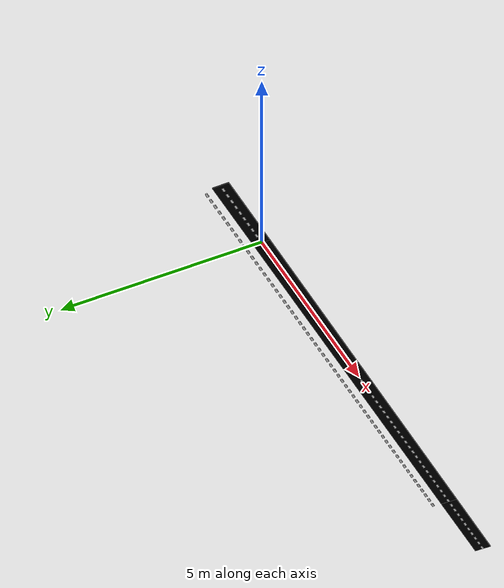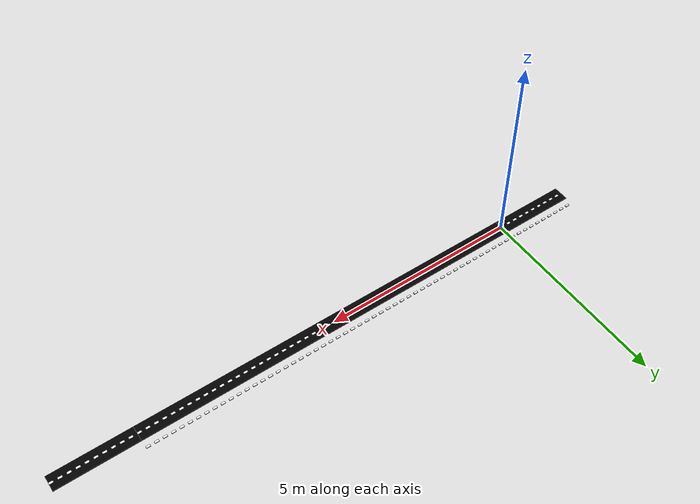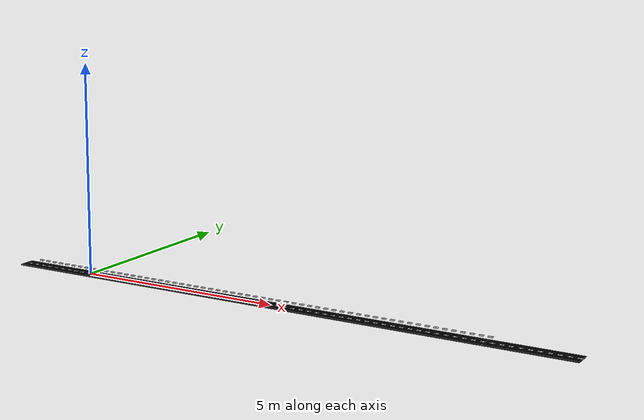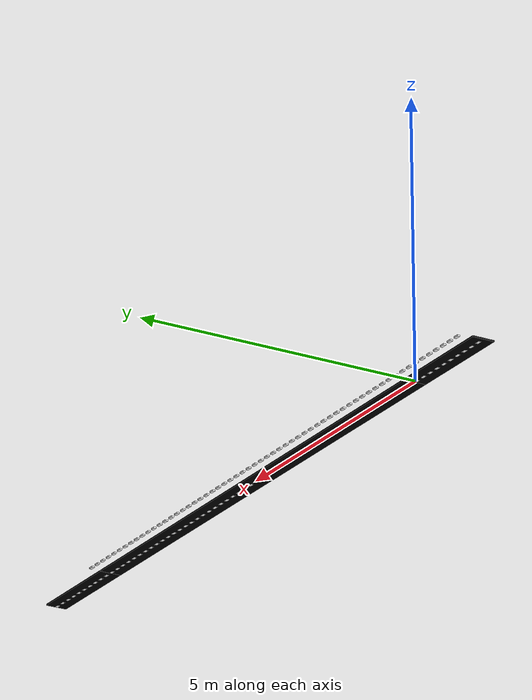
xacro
<?xml version="1.0"?>
<robot xmlns:xacro="http://www.ros.org/wiki/xacro" name="Track_01">
  <!-- Make the whole track static -->
  <gazebo>
    <static>true</static>
  </gazebo>

  <link
    name="Track_link">
    <inertial>
      <origin
        xyz="4.9967 -4.4409E-16 -0.0125"
        rpy="0 0 0" />
      <mass
        value="675" />
      <inertia
        ixx="9.6258"
        ixy="-1.4331E-12"
        ixz="-5.6401E-13"
        iyy="5625"
        iyz="2.6467E-13"
        izz="5634.6" />
    </inertial>
    <visual>
      <origin
        xyz="0 0 0.0125"
        rpy="0 0 0" />
      <geometry>
        <mesh
          filename="file://$(find mec)/meshes/Track_01_meshes/Track_link.STL" />
      </geometry>
      <material
        name="">
        <color
          rgba="0 0 0 1" />
      </material>
    </visual>
    <collision>
      <origin
        xyz="0 0 0.0125"
        rpy="0 0 0" />
      <geometry>
        <mesh
          filename="file://$(find mec)/meshes/Track_01_meshes/Track_link.STL" />
      </geometry>
    </collision>
  </link>
  <link
    name="Track_lane">
    <inertial>
      <origin
        xyz="4.9 -1.3323E-15 -0.0125"
        rpy="0 0 0" />
      <mass
        value="45" />
      <inertia
        ixx="0.011719"
        ixy="-6.7221E-17"
        ixz="-1.9421E-17"
        iyy="0.039844"
        iyz="-5.9169E-18"
        izz="0.046875" />
    </inertial>
    <visual>
      <origin
        xyz="0 0 0.0125"
        rpy="0 0 0" />
      <geometry>
        <mesh
          filename="file://$(find mec)/meshes/Track_01_meshes/Track_lane.STL" />
      </geometry>
      <material
        name="">
        <color
          rgba="1 1 1 1" />
      </material>
    </visual>
    <collision>
      <origin
        xyz="0 0 0.0125"
        rpy="0 0 0" />
      <geometry>
        <mesh
          filename="file://$(find mec)/meshes/Track_01_meshes/Track_lane.STL" />
      </geometry>
    </collision>
  </link>
  <joint
    name="Track_lane_joint"
    type="fixed">
    <origin
      xyz="0.15 0 0"
      rpy="0 0 0" />
    <parent
      link="Track_link" />
    <child
      link="Track_lane" />
    <axis
      xyz="0 0 0" />
  </joint>
  <link
    name="Back_Track">
    <inertial>
      <origin
        xyz="0 -8.8818E-16 -0.0125"
        rpy="0 0 0" />
      <mass
        value="135" />
      <inertia
        ixx="1.9252"
        ixy="1.1213E-14"
        ixz="-4.978E-15"
        iyy="45.006"
        iyz="-5.6329E-17"
        izz="46.917" />
    </inertial>
    <visual>
      <origin
        xyz="0 0 0.0125"
        rpy="0 0 0" />
      <geometry>
        <mesh
          filename="file://$(find mec)/meshes/Track_01_meshes/Back_Track.STL" />
      </geometry>
      <material
        name="">
        <color
          rgba="0 0 0 1" />
      </material>
    </visual>
    <collision>
      <origin
        xyz="0 0 0.0125"
        rpy="0 0 0" />
      <geometry>
        <mesh
          filename="file://$(find mec)/meshes/Track_01_meshes/Back_Track.STL" />
      </geometry>
    </collision>
  </link>
  <joint
    name="Back_Track_joint"
    type="fixed">
    <origin
      xyz="-1.0033 0 0"
      rpy="0 0 0" />
    <parent
      link="Track_link" />
    <child
      link="Back_Track" />
    <axis
      xyz="0 0 0" />
  </joint>
  <link
    name="Back_lane">
    <inertial>
      <origin
        xyz="0.5 8.8818E-16 -0.0125"
        rpy="0 0 0" />
      <mass
        value="9" />
      <inertia
        ixx="0.0023438"
        ixy="-2.4882E-17"
        ixz="-6.6795E-18"
        iyy="0.0079688"
        iyz="2.6971E-18"
        izz="0.009375" />
    </inertial>
    <visual>
      <origin
        xyz="0 0 0.0125"
        rpy="0 0 0" />
      <geometry>
        <mesh
          filename="file://$(find mec)/meshes/Track_01_meshes/Back_lane.STL" />
      </geometry>
      <material
        name="">
        <color
          rgba="1 1 1 1" />
      </material>
    </visual>
    <collision>
      <origin
        xyz="0 0 0.0125"
        rpy="0 0 0" />
      <geometry>
        <mesh
          filename="file://$(find mec)/meshes/Track_01_meshes/Back_lane.STL" />
      </geometry>
    </collision>
  </link>
  <joint
    name="Back_lane_joint"
    type="fixed">
    <origin
      xyz="-0.44667 0 0"
      rpy="0 0 0" />
    <parent
      link="Back_Track" />
    <child
      link="Back_lane" />
    <axis
      xyz="0 0 0" />
  </joint>
  <link
    name="Front_Track">
    <inertial>
      <origin
        xyz="0 0 -0.0125"
        rpy="0 0 0" />
      <mass
        value="135" />
      <inertia
        ixx="1.9252"
        ixy="-2.9754E-14"
        ixz="-6.9568E-15"
        iyy="45.006"
        iyz="-3.4254E-16"
        izz="46.917" />
    </inertial>
    <visual>
      <origin
        xyz="0 0 0.0125"
        rpy="0 0 0" />
      <geometry>
        <mesh
          filename="file://$(find mec)/meshes/Track_01_meshes/Front_Track.STL" />
      </geometry>
      <material
        name="">
        <color
          rgba="0 0 0 1" />
      </material>
    </visual>
    <collision>
      <origin
        xyz="0 0 0.0125"
        rpy="0 0 0" />
      <geometry>
        <mesh
          filename="file://$(find mec)/meshes/Track_01_meshes/Front_Track.STL" />
      </geometry>
    </collision>
  </link>
  <joint
    name="Front_Track_joint"
    type="fixed">
    <origin
      xyz="10.997 0 0"
      rpy="0 0 0" />
    <parent
      link="Track_link" />
    <child
      link="Front_Track" />
    <axis
      xyz="0 0 0" />
  </joint>
  <link
    name="Front_lane">
    <inertial>
      <origin
        xyz="-0.9 1.1102E-16 -0.0125"
        rpy="0 0 0" />
      <mass
        value="9" />
      <inertia
        ixx="0.0023438"
        ixy="9.9204E-18"
        ixz="4.8054E-18"
        iyy="0.0079687"
        iyz="-1.2041E-18"
        izz="0.009375" />
    </inertial>
    <visual>
      <origin
        xyz="0 0 0.0125"
        rpy="0 0 0" />
      <geometry>
        <mesh
          filename="file://$(find mec)/meshes/Track_01_meshes/Front_lane.STL" />
      </geometry>
      <material
        name="">
        <color
          rgba="1 1 1 1" />
      </material>
    </visual>
    <collision>
      <origin
        xyz="0 0 0.0125"
        rpy="0 0 0" />
      <geometry>
        <mesh
          filename="file://$(find mec)/meshes/Track_01_meshes/Front_lane.STL" />
      </geometry>
    </collision>
  </link>
  <joint
    name="Front_lane_joint"
    type="fixed">
    <origin
      xyz="0.95333 0 0"
      rpy="0 0 0" />
    <parent
      link="Front_Track" />
    <child
      link="Front_lane" />
    <axis
      xyz="0 0 0" />
  </joint>

  <gazebo reference="Track_link">
    <material>Gazebo/Black</material>
    <mu1>50.0</mu1><mu2>50.0</mu2>
  </gazebo>

  <gazebo reference="Track_lane">
    <material>Gazebo/White</material>
    <mu1>50.0</mu1><mu2>50.0</mu2>
  </gazebo>

  <gazebo reference="Back_Track">
    <material>Gazebo/Black</material>
    <mu1>50.0</mu1><mu2>50.0</mu2>
  </gazebo>

  <gazebo reference="Back_lane">
    <material>Gazebo/White</material>
    <mu1>50.0</mu1><mu2>50.0</mu2>
  </gazebo>

  <gazebo reference="Front_Track">
    <material>Gazebo/Black</material>
    <mu1>50.0</mu1><mu2>50.0</mu2>
  </gazebo>

  <gazebo reference="Front_lane">
    <material>Gazebo/White</material>
    <mu1>50.0</mu1><mu2>50.0</mu2>
  </gazebo>

</robot>
